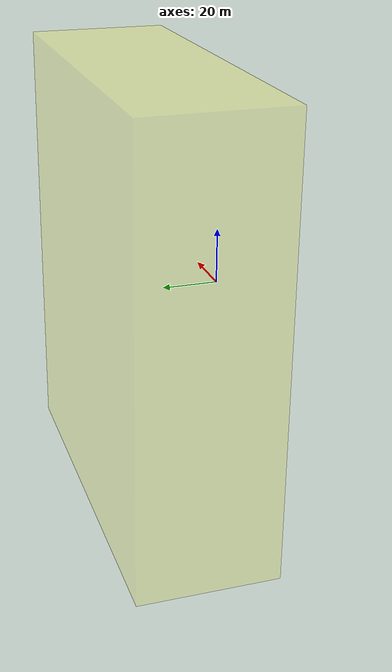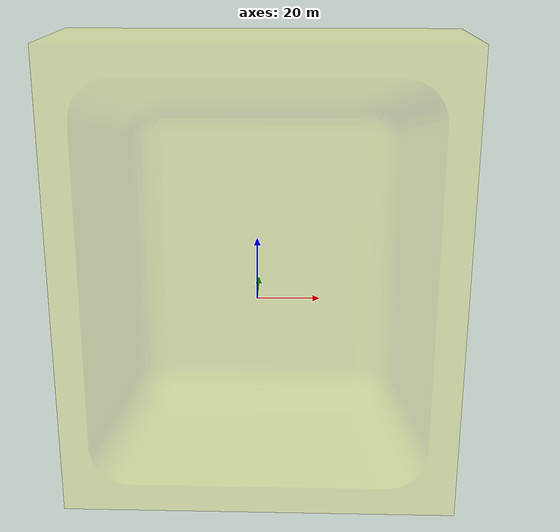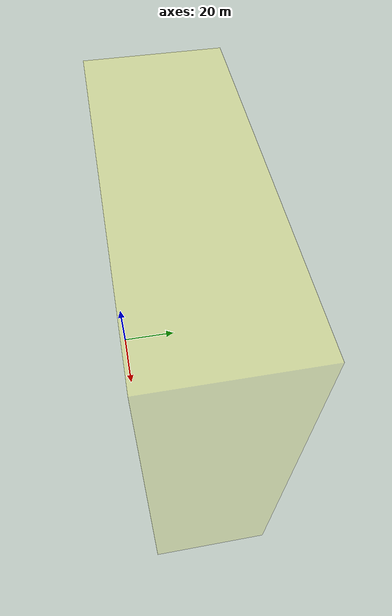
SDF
<?xml version="1.0"?>
<sdf version="1.7" xmlns:drake="drake.mit.edu">
	<model name="ikea_bin">
		<!-- Make this model static so the bin does not move in simulation. -->
		<!-- Default placement for the static bin when included directly.
		     This places the model at (0.5, 0.11, 0.11) in the parent frame. -->

		<!-- what does this even do? -->
		<pose>0.0 0.0 0.0 0 0 0</pose>

		<link name="ikea_bin">
			<inertial>
				<pose>0 0 0 0 0 0</pose>
				<!-- approximate mass -->
				<mass>1.2</mass>
				<inertia>
					<ixx>0.02</ixx>
					<ixy>0.0</ixy>
					<ixz>0.0</ixz>
					<iyy>0.02</iyy>
					<iyz>0.0</iyz>
					<izz>0.02</izz>
				</inertia>
			</inertial>

			<visual name="visual">
				<pose>0.0 0.0 0.05 -1.57 3.14 0</pose>
				<geometry>
					<mesh>
						<!-- Use relative path so Bazel runfiles can stage package data together -->
						<uri>assets/ikea_bin_v4.gltf</uri>
						<scale>1 1 1</scale>
					</mesh>
				</geometry>
				<material>
					<ambient>1.0 1.0 0.0 0.1</ambient> <!-- alpha = 0.5 -->
					<diffuse>1.0 1.0 0.0 0.1</diffuse> <!-- alpha = 0.5 -->
				</material>
			</visual>

			<collision name="collision">
                <pose>0.0 0.0 0.05 0 3.14 0</pose>
				<geometry>
					<mesh>
						<uri>assets/ikea_bin_v4.1_only_tets.vtk</uri>
						<scale>0.001 0.001 0.001</scale>
					</mesh>
				</geometry>
			</collision>
		</link>

		<frame name="origin">
			<pose relative_to="ikea_bin">0 0 0 0 0 0</pose>
		</frame>
	</model>
</sdf>
